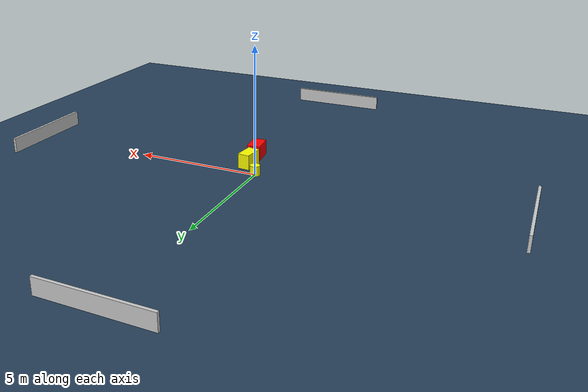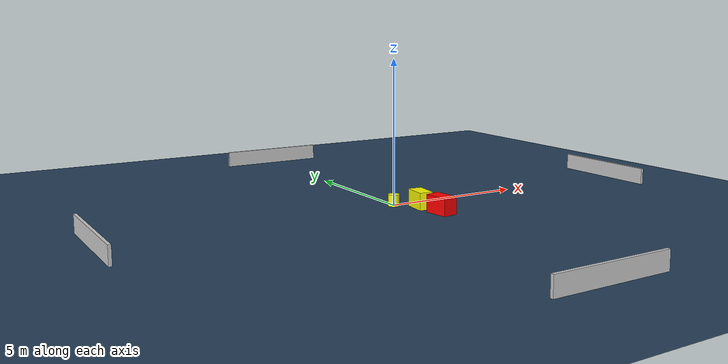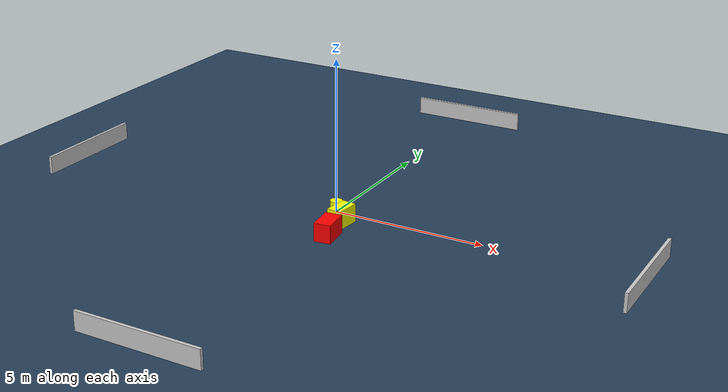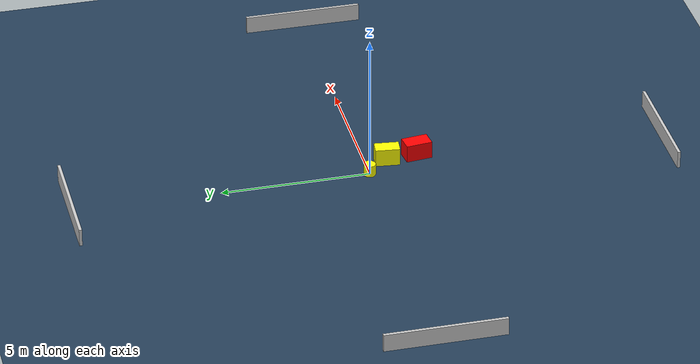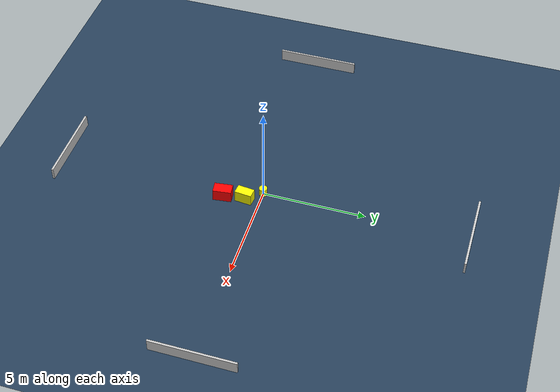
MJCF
<?xml version="1.0" ?>
<mujoco model="generated_environment">
  <option timestep="0.01" integrator="RK4" cone="elliptic"/>
  <default>
    <geom density="1"/>
  </default>
  <asset>
    <texture builtin="gradient" height="3072" name="skybox" rgb1="0.3 0.5 0.7" rgb2="0 0 0" type="skybox" width="512"/>
    <texture builtin="checker" height="300" name="groundplane" rgb1="0.2 0.3 0.4" rgb2="0.1 0.2 0.3" type="2d" width="300"/>
    <material name="groundplane" reflectance="0.2" texrepeat="5 5" texture="groundplane"/>
  </asset>
  <worldbody>
    <light dir="0 0 -1" directional="true" pos="0 0 1.5"/>
    <geom condim="3" friction="0.5 0.005 0.001" material="groundplane" name="floor" pos="0 0 0" size="0 0 0.05" type="plane"/>
    <body name="walls">
      <geom name="wall_1" condim="4" pos="-10.0 0.0 0.3" rgba="0.800000011920929 0.800000011920929 0.800000011920929 1.0" size="0.05 2.0 0.3" type="box"/>
      <geom name="wall_2" condim="4" pos="10.0 0.0 0.3" rgba="0.800000011920929 0.800000011920929 0.800000011920929 1.0" size="0.05 2.0 0.3" type="box"/>
      <geom name="wall_3" condim="4" pos="0.0 -10.0 0.3" rgba="0.800000011920929 0.800000011920929 0.800000011920929 1.0" size="2.0 0.05 0.3" type="box"/>
      <geom name="wall_4" condim="4" pos="0.0 10.0 0.3" rgba="0.800000011920929 0.800000011920929 0.800000011920929 1.0" size="2.0 0.05 0.3" type="box"/>
    </body>
    <body name="robot">
      <joint name="joint_x" type="slide" pos="0 0 0" axis="1 0 0"/>
      <joint name="joint_y" type="slide" pos="0 0 0" axis="0 1 0"/>
      <geom name="robot" type="cylinder" pos="0.0 0.0 0.2" size="0.2 0.2 0.0" mass="5.0" friction="1.0 0.005 0.0001" condim="4" rgba="1.0 1.0 0.0 1.0"/>
    </body>
    <body name="obstacle_1_movable">
      <geom name="obstacle_1_movable" condim="4" pos="0.6076178668084832 -0.7302943705339551 0.3" euler="0 0 264.0151780655543" friction="0.0 0.005 0.001" rgba="1.0 1.0 0.0 1.0" size="0.41204161532716865 0.23830400084782144 0.3" type="box" mass="0.1"/>
      <joint type="free"/>
    </body>
    <body name="obstacle_2_static">
      <geom name="obstacle_2_static" condim="4" pos="0.735209042854528 -1.7729167199801776 0.3" euler="0 0 276.72146619485056" friction="0.0 0.005 0.001" rgba="1.0 0.0 0.0 1.0" size="0.4434775978298151 0.2695293143954656 0.3" type="box"/>
    </body>
  </worldbody>
  <actuator>
    <motor name="actuator_x" joint="joint_x" gear="1" ctrlrange="-1 1"/>
    <motor name="actuator_y" joint="joint_y" gear="1" ctrlrange="-1 1"/>
  </actuator>
</mujoco>
